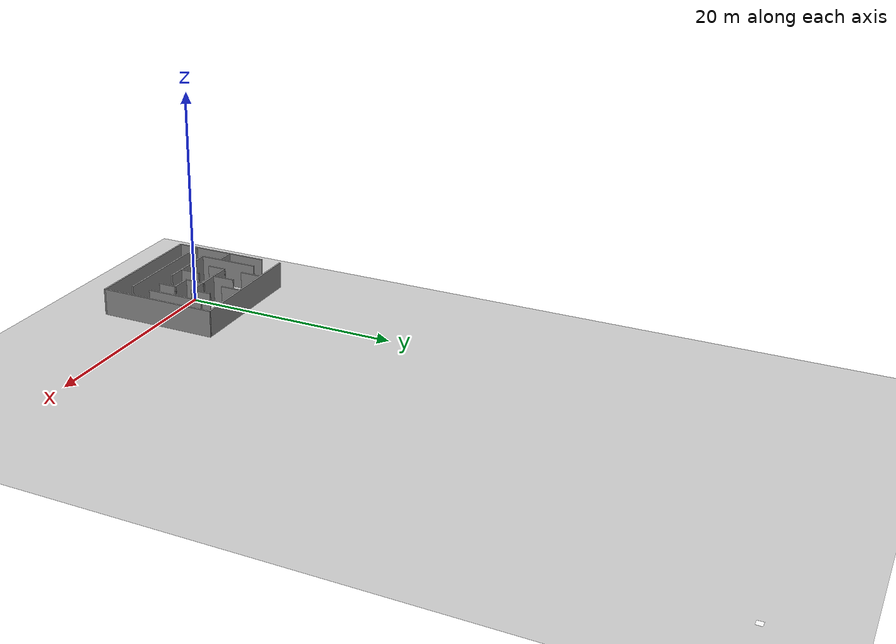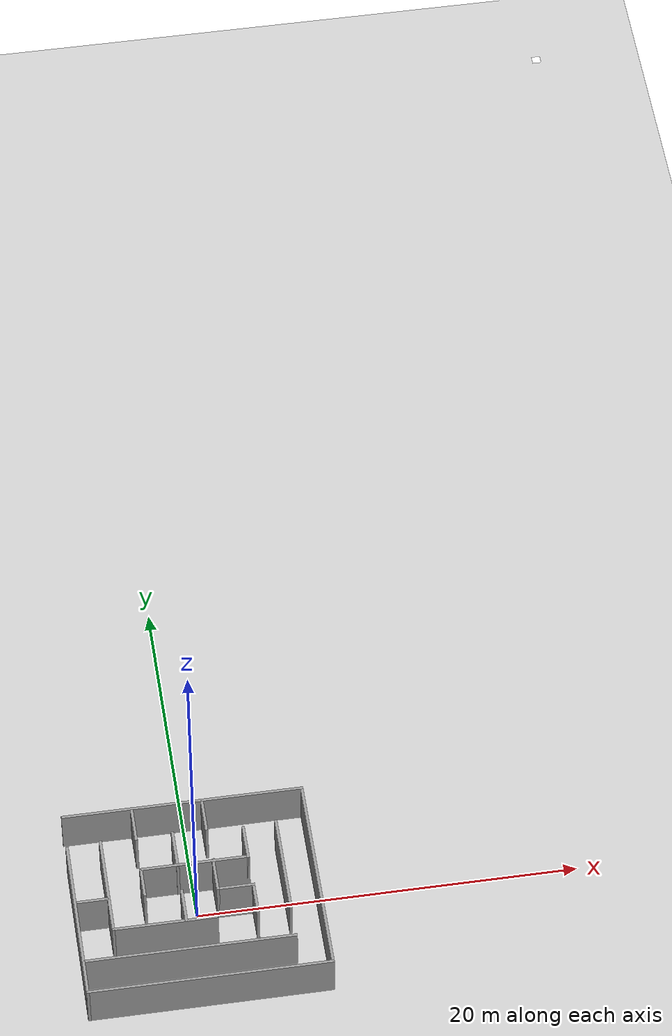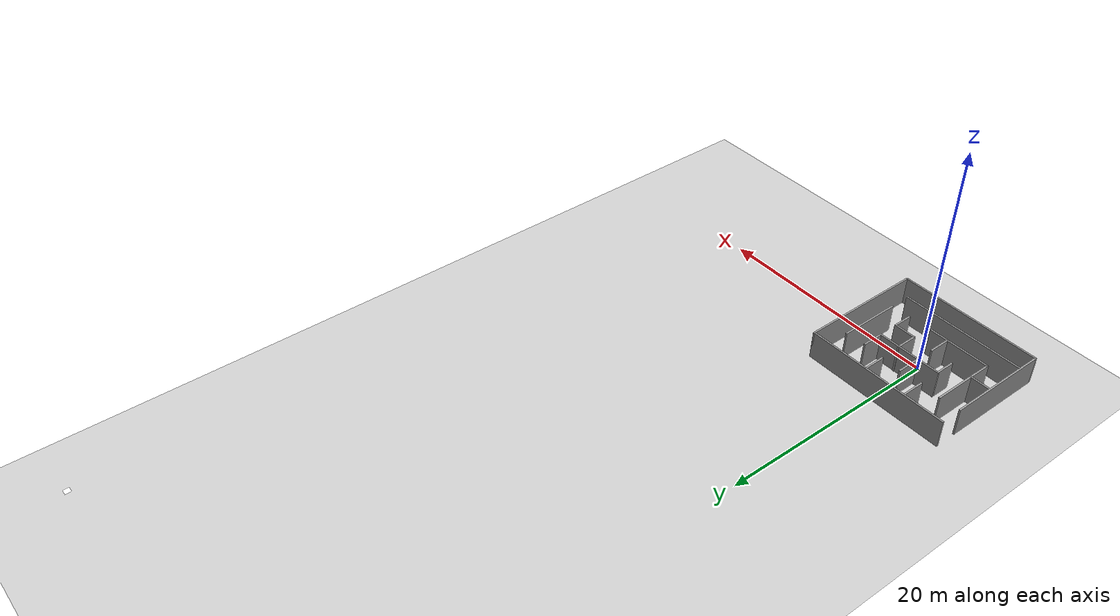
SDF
<?xml version="1.0"?>
<sdf version="1.6">
  <world name="maze_world">

    <!-- Physics -->
    <physics name="1ms" type="ignored">
      <max_step_size>0.001</max_step_size>
      <real_time_factor>1.0</real_time_factor>
    </physics>

    <!-- Core Plugins - Using Ignition naming convention -->
    <plugin filename="ignition-gazebo-contact-system" name="gz::sim::systems::Contact" />
    <plugin filename="ignition-gazebo-imu-system" name="gz::sim::systems::Imu" />
    <plugin filename="ignition-gazebo-physics-system" name="gz::sim::systems::Physics" />
    <plugin filename="ignition-gazebo-scene-broadcaster-system" name="gz::sim::systems::SceneBroadcaster" />
    <plugin filename="ignition-gazebo-sensors-system" name="gz::sim::systems::Sensors" />
    <plugin filename="ignition-gazebo-user-commands-system" name="gz::sim::systems::UserCommands" />

    <!-- Optional: Geographic coordinates for GPS simulation -->
    <spherical_coordinates>
      <surface_model>EARTH_WGS84</surface_model>
      <world_frame_orientation>ENU</world_frame_orientation>
      <latitude_deg>50.088384</latitude_deg>
      <longitude_deg>19.939128</longitude_deg>
      <elevation>0</elevation>
      <heading_deg>0</heading_deg>
    </spherical_coordinates>

    <!-- Lighting -->
    <light type="directional" name="sun">
      <cast_shadows>true</cast_shadows>
      <pose>0 0 10 0 0 0</pose>
      <diffuse>0.8 0.8 0.8 1</diffuse>
      <specular>0.2 0.2 0.2 1</specular>
      <attenuation>
        <range>1000</range>
        <constant>0.9</constant>
        <linear>0.01</linear>
        <quadratic>0.001</quadratic>
      </attenuation>
      <direction>-0.5 0.1 -0.9</direction>
    </light>

    <!-- Ground plane -->
    <model name="ground_plane">
      <static>true</static>
      <link name="link">
        <collision name="collision">
          <geometry>
            <plane>
              <normal>0 0 1</normal>
              <size>500 500</size>
            </plane>
          </geometry>
        </collision>
        <visual name="visual">
          <geometry>
            <plane>
              <normal>0 0 1</normal>
              <size>500 500</size>
            </plane>
          </geometry>
          <material>
            <ambient>0.8 0.8 0.8 1</ambient>
            <diffuse>0.8 0.8 0.8 1</diffuse>
            <specular>0.8 0.8 0.8 1</specular>
          </material>
        </visual>
      </link>
    </model>

    <!-- Include the maze model using model:// URI -->
    <include>
      <uri>model://maze</uri>
      <pose>0 0 0 0 0 0</pose>
    </include>

    <!-- ArUco marker 1 -->
    <include>
      <uri>model://aruco1</uri>
      <pose>28 57.70 1 0 0 3.14</pose>
    </include>

  </world>
</sdf>

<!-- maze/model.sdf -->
<sdf version='1.7'>
  <model name='maze'>
    <pose>0.736927 -0.393909 0 0 -0 0</pose>
    <link name='Wall_1'>
      <collision name='Wall_1_Collision'>
        <geometry>
          <box>
            <size>12.75 0.15 2.5</size>
          </box>
        </geometry>
        <pose>0 0 1.25 0 -0 0</pose>
      </collision>
      <visual name='Wall_1_Visual'>
        <pose>0 0 1.25 0 -0 0</pose>
        <geometry>
          <box>
            <size>12.75 0.15 2.5</size>
          </box>
        </geometry>
        <material>
          <script>
            <uri>file://media/materials/scripts/gazebo.material</uri>
            <name>Gazebo/Grey</name>
          </script>
          <ambient>1 1 1 1</ambient>
        </material>
        <meta>
          <layer>0</layer>
        </meta>
      </visual>
      <pose>0 5.55 0 0 -0 0</pose>
    </link>
    <link name='Wall_10'>
      <collision name='Wall_10_Collision'>
        <geometry>
          <box>
            <size>5.75 0.15 2.5</size>
          </box>
        </geometry>
        <pose>0 0 1.25 0 -0 0</pose>
      </collision>
      <visual name='Wall_10_Visual'>
        <pose>0 0 1.25 0 -0 0</pose>
        <geometry>
          <box>
            <size>5.75 0.15 2.5</size>
          </box>
        </geometry>
        <material>
          <script>
            <uri>file://media/materials/scripts/gazebo.material</uri>
            <name>Gazebo/Grey</name>
          </script>
          <ambient>1 1 1 1</ambient>
        </material>
        <meta>
          <layer>0</layer>
        </meta>
      </visual>
      <pose>-4.54439 0.887986 0 0 -0 -1.5708</pose>
    </link>
    <link name='Wall_11'>
      <collision name='Wall_11_Collision'>
        <geometry>
          <box>
            <size>5.5 0.15 2.5</size>
          </box>
        </geometry>
        <pose>0 0 1.25 0 -0 0</pose>
      </collision>
      <visual name='Wall_11_Visual'>
        <pose>0 0 1.25 0 -0 0</pose>
        <geometry>
          <box>
            <size>5.5 0.15 2.5</size>
          </box>
        </geometry>
        <material>
          <script>
            <uri>file://media/materials/scripts/gazebo.material</uri>
            <name>Gazebo/Grey</name>
          </script>
          <ambient>1 1 1 1</ambient>
        </material>
        <meta>
          <layer>0</layer>
        </meta>
      </visual>
      <pose>-1.86939 -1.91201 0 0 -0 0</pose>
    </link>
    <link name='Wall_13'>
      <collision name='Wall_13_Collision'>
        <geometry>
          <box>
            <size>2 0.15 2.5</size>
          </box>
        </geometry>
        <pose>0 0 1.25 0 -0 0</pose>
      </collision>
      <visual name='Wall_13_Visual'>
        <pose>0 0 1.25 0 -0 0</pose>
        <geometry>
          <box>
            <size>2 0.15 2.5</size>
          </box>
        </geometry>
        <material>
          <script>
            <uri>file://media/materials/scripts/gazebo.material</uri>
            <name>Gazebo/Grey</name>
          </script>
          <ambient>1 1 1 1</ambient>
        </material>
        <meta>
          <layer>0</layer>
        </meta>
      </visual>
      <pose>-0.767159 -0.973055 0 0 -0 1.5708</pose>
    </link>
    <link name='Wall_15'>
      <collision name='Wall_15_Collision'>
        <geometry>
          <box>
            <size>1.75 0.15 2.5</size>
          </box>
        </geometry>
        <pose>0 0 1.25 0 -0 0</pose>
      </collision>
      <visual name='Wall_15_Visual'>
        <pose>0 0 1.25 0 -0 0</pose>
        <geometry>
          <box>
            <size>1.75 0.15 2.5</size>
          </box>
        </geometry>
        <material>
          <script>
            <uri>file://media/materials/scripts/gazebo.material</uri>
            <name>Gazebo/Grey</name>
          </script>
          <ambient>1 1 1 1</ambient>
        </material>
        <meta>
          <layer>0</layer>
        </meta>
      </visual>
      <pose>-2.68237 0.817159 0 0 -0 1.5708</pose>
    </link>
    <link name='Wall_16'>
      <collision name='Wall_16_Collision'>
        <geometry>
          <box>
            <size>5.75 0.15 2.5</size>
          </box>
        </geometry>
        <pose>0 0 1.25 0 -0 0</pose>
      </collision>
      <visual name='Wall_16_Visual'>
        <pose>0 0 1.25 0 -0 0</pose>
        <geometry>
          <box>
            <size>5.75 0.15 2.5</size>
          </box>
        </geometry>
        <material>
          <script>
            <uri>file://media/materials/scripts/gazebo.material</uri>
            <name>Gazebo/Grey</name>
          </script>
          <ambient>1 1 1 1</ambient>
        </material>
        <meta>
          <layer>0</layer>
        </meta>
      </visual>
      <pose>0.117627 1.61716 0 0 -0 0</pose>
    </link>
    <link name='Wall_17'>
      <collision name='Wall_17_Collision'>
        <geometry>
          <box>
            <size>2 0.15 2.5</size>
          </box>
        </geometry>
        <pose>0 0 1.25 0 -0 0</pose>
      </collision>
      <visual name='Wall_17_Visual'>
        <pose>0 0 1.25 0 -0 0</pose>
        <geometry>
          <box>
            <size>2 0.15 2.5</size>
          </box>
        </geometry>
        <material>
          <script>
            <uri>file://media/materials/scripts/gazebo.material</uri>
            <name>Gazebo/Grey</name>
          </script>
          <ambient>1 1 1 1</ambient>
        </material>
        <meta>
          <layer>0</layer>
        </meta>
      </visual>
      <pose>2.91763 2.54216 0 0 -0 1.5708</pose>
    </link>
    <link name='Wall_19'>
      <collision name='Wall_19_Collision'>
        <geometry>
          <box>
            <size>2.25 0.15 2.5</size>
          </box>
        </geometry>
        <pose>0 0 1.25 0 -0 0</pose>
      </collision>
      <visual name='Wall_19_Visual'>
        <pose>0 0 1.25 0 -0 0</pose>
        <geometry>
          <box>
            <size>2.25 0.15 2.5</size>
          </box>
        </geometry>
        <material>
          <script>
            <uri>file://media/materials/scripts/gazebo.material</uri>
            <name>Gazebo/Grey</name>
          </script>
          <ambient>1 1 1 1</ambient>
        </material>
        <meta>
          <layer>0</layer>
        </meta>
      </visual>
      <pose>-0.767159 2.63657 0 0 -0 1.5708</pose>
    </link>
    <link name='Wall_2'>
      <collision name='Wall_2_Collision'>
        <geometry>
          <box>
            <size>11.25 0.15 2.5</size>
          </box>
        </geometry>
        <pose>0 0 1.25 0 -0 0</pose>
      </collision>
      <visual name='Wall_2_Visual'>
        <pose>0 0 1.25 0 -0 0</pose>
        <geometry>
          <box>
            <size>11.25 0.15 2.5</size>
          </box>
        </geometry>
        <material>
          <script>
            <uri>file://media/materials/scripts/gazebo.material</uri>
            <name>Gazebo/Grey</name>
          </script>
          <ambient>1 1 1 1</ambient>
        </material>
        <meta>
          <layer>0</layer>
        </meta>
      </visual>
      <pose>6.3 0 0 0 -0 -1.5708</pose>
    </link>
    <link name='Wall_21'>
      <collision name='Wall_21_Collision'>
        <geometry>
          <box>
            <size>2 0.15 2.5</size>
          </box>
        </geometry>
        <pose>0 0 1.25 0 -0 0</pose>
      </collision>
      <visual name='Wall_21_Visual'>
        <pose>0 0 1.25 0 -0 0</pose>
        <geometry>
          <box>
            <size>2 0.15 2.5</size>
          </box>
        </geometry>
        <material>
          <script>
            <uri>file://media/materials/scripts/gazebo.material</uri>
            <name>Gazebo/Grey</name>
          </script>
          <ambient>1 1 1 1</ambient>
        </material>
        <meta>
          <layer>0</layer>
        </meta>
      </visual>
      <pose>1.09485 0.741371 0 0 -0 -1.5708</pose>
    </link>
    <link name='Wall_22'>
      <collision name='Wall_22_Collision'>
        <geometry>
          <box>
            <size>2 0.15 2.5</size>
          </box>
        </geometry>
        <pose>0 0 1.25 0 -0 0</pose>
      </collision>
      <visual name='Wall_22_Visual'>
        <pose>0 0 1.25 0 -0 0</pose>
        <geometry>
          <box>
            <size>2 0.15 2.5</size>
          </box>
        </geometry>
        <material>
          <script>
            <uri>file://media/materials/scripts/gazebo.material</uri>
            <name>Gazebo/Grey</name>
          </script>
          <ambient>1 1 1 1</ambient>
        </material>
        <meta>
          <layer>0</layer>
        </meta>
      </visual>
      <pose>2.01986 -0.183629 0 0 -0 0</pose>
    </link>
    <link name='Wall_23'>
      <collision name='Wall_23_Collision'>
        <geometry>
          <box>
            <size>1.75 0.15 2.5</size>
          </box>
        </geometry>
        <pose>0 0 1.25 0 -0 0</pose>
      </collision>
      <visual name='Wall_23_Visual'>
        <pose>0 0 1.25 0 -0 0</pose>
        <geometry>
          <box>
            <size>1.75 0.15 2.5</size>
          </box>
        </geometry>
        <material>
          <script>
            <uri>file://media/materials/scripts/gazebo.material</uri>
            <name>Gazebo/Grey</name>
          </script>
          <ambient>1 1 1 1</ambient>
        </material>
        <meta>
          <layer>0</layer>
        </meta>
      </visual>
      <pose>2.94486 -0.983629 0 0 -0 -1.5708</pose>
    </link>
    <link name='Wall_25'>
      <collision name='Wall_25_Collision'>
        <geometry>
          <box>
            <size>11 0.15 2.5</size>
          </box>
        </geometry>
        <pose>0 0 1.25 0 -0 0</pose>
      </collision>
      <visual name='Wall_25_Visual'>
        <pose>0 0 1.25 0 -0 0</pose>
        <geometry>
          <box>
            <size>11 0.15 2.5</size>
          </box>
        </geometry>
        <material>
          <script>
            <uri>file://media/materials/scripts/gazebo.material</uri>
            <name>Gazebo/Grey</name>
          </script>
          <ambient>1 1 1 1</ambient>
        </material>
        <meta>
          <layer>0</layer>
        </meta>
      </visual>
      <pose>-0.768599 -3.65367 0 0 -0 0</pose>
    </link>
    <link name='Wall_27'>
      <collision name='Wall_27_Collision'>
        <geometry>
          <box>
            <size>1.75 0.15 2.5</size>
          </box>
        </geometry>
        <pose>0 0 1.25 0 -0 0</pose>
      </collision>
      <visual name='Wall_27_Visual'>
        <pose>0 0 1.25 0 -0 0</pose>
        <geometry>
          <box>
            <size>1.75 0.15 2.5</size>
          </box>
        </geometry>
        <material>
          <script>
            <uri>file://media/materials/scripts/gazebo.material</uri>
            <name>Gazebo/Grey</name>
          </script>
          <ambient>1 1 1 1</ambient>
        </material>
        <meta>
          <layer>0</layer>
        </meta>
      </visual>
      <pose>-5.367 0.043759 0 0 -0 0</pose>
    </link>
    <link name='Wall_29'>
      <collision name='Wall_29_Collision'>
        <geometry>
          <box>
            <size>5.5 0.15 2.5</size>
          </box>
        </geometry>
        <pose>0 0 1.25 0 -0 0</pose>
      </collision>
      <visual name='Wall_29_Visual'>
        <pose>0 0 1.25 0 -0 0</pose>
        <geometry>
          <box>
            <size>5.5 0.15 2.5</size>
          </box>
        </geometry>
        <material>
          <script>
            <uri>file://media/materials/scripts/gazebo.material</uri>
            <name>Gazebo/Grey</name>
          </script>
          <ambient>1 1 1 1</ambient>
        </material>
        <meta>
          <layer>0</layer>
        </meta>
      </visual>
      <pose>4.65928 0.936546 0 0 -0 1.5708</pose>
    </link>
    <link name='Wall_3'>
      <collision name='Wall_3_Collision'>
        <geometry>
          <box>
            <size>12.75 0.15 2.5</size>
          </box>
        </geometry>
        <pose>0 0 1.25 0 -0 0</pose>
      </collision>
      <visual name='Wall_3_Visual'>
        <pose>0 0 1.25 0 -0 0</pose>
        <geometry>
          <box>
            <size>12.75 0.15 2.5</size>
          </box>
        </geometry>
        <material>
          <script>
            <uri>file://media/materials/scripts/gazebo.material</uri>
            <name>Gazebo/Grey</name>
          </script>
          <ambient>1 1 1 1</ambient>
        </material>
        <meta>
          <layer>0</layer>
        </meta>
      </visual>
      <pose>0 -5.55 0 0 -0 3.14159</pose>
    </link>
    <link name='Wall_4'>
      <collision name='Wall_4_Collision'>
        <geometry>
          <box>
            <size>9.25 0.15 2.5</size>
          </box>
        </geometry>
        <pose>0 0 1.25 0 -0 0</pose>
      </collision>
      <visual name='Wall_4_Visual'>
        <pose>0 0 1.25 0 -0 0</pose>
        <geometry>
          <box>
            <size>9.25 0.15 2.5</size>
          </box>
        </geometry>
        <material>
          <script>
            <uri>file://media/materials/scripts/gazebo.material</uri>
            <name>Gazebo/Grey</name>
          </script>
          <ambient>1 1 1 1</ambient>
        </material>
        <meta>
          <layer>0</layer>
        </meta>
      </visual>
      <pose>-6.3 -1 0 0 -0 1.5708</pose>
    </link>
    <link name='Wall_6'>
      <collision name='Wall_6_Collision'>
        <geometry>
          <box>
            <size>2 0.15 2.5</size>
          </box>
        </geometry>
        <pose>0 0 1.25 0 -0 0</pose>
      </collision>
      <visual name='Wall_6_Visual'>
        <pose>0 0 1.25 0 -0 0</pose>
        <geometry>
          <box>
            <size>2 0.15 2.5</size>
          </box>
        </geometry>
        <material>
          <script>
            <uri>file://media/materials/scripts/gazebo.material</uri>
            <name>Gazebo/Grey</name>
          </script>
          <ambient>1 1 1 1</ambient>
        </material>
        <meta>
          <layer>0</layer>
        </meta>
      </visual>
      <pose>-2.68237 4.492 0 0 -0 -1.5708</pose>
    </link>
    <link name='Wall_8'>
      <collision name='Wall_8_Collision'>
        <geometry>
          <box>
            <size>2 0.15 2.5</size>
          </box>
        </geometry>
        <pose>0 0 1.25 0 -0 0</pose>
      </collision>
      <visual name='Wall_8_Visual'>
        <pose>0 0 1.25 0 -0 0</pose>
        <geometry>
          <box>
            <size>2 0.15 2.5</size>
          </box>
        </geometry>
        <material>
          <script>
            <uri>file://media/materials/scripts/gazebo.material</uri>
            <name>Gazebo/Grey</name>
          </script>
          <ambient>1 1 1 1</ambient>
        </material>
        <meta>
          <layer>0</layer>
        </meta>
      </visual>
      <pose>1.01506 4.5984 0 0 -0 -1.5708</pose>
    </link>
    <static>1</static>
  </model>
</sdf>

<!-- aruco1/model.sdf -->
<sdf version='1.9'>
  <model name='aruco1'>
    <static>true</static>
    <pose>0 0 0.001 0 0 0</pose>
    <link name='base'>
      <visual name='base_visual'>
        <geometry>
          <plane>
            <normal>0 0 1</normal>
            <size>0.5 0.5</size>
          </plane>
        </geometry>
        <material>
          <diffuse>1 1 1 1</diffuse>
          <specular>0.4 0.4 0.4 1</specular>
          <pbr>
            <metal>
              <albedo_map>model://aruco1/materials/textures/aruco1.png</albedo_map>
            </metal>
          </pbr>
        </material>
      </visual>
    </link>
  </model>
</sdf>
